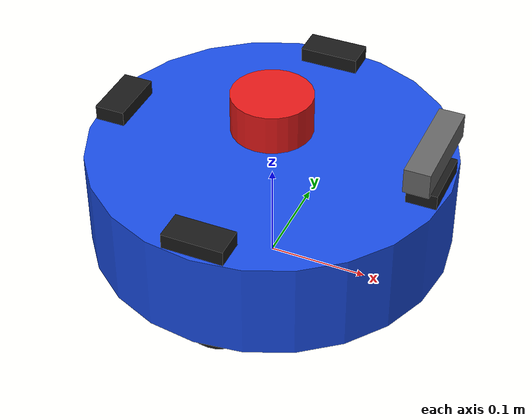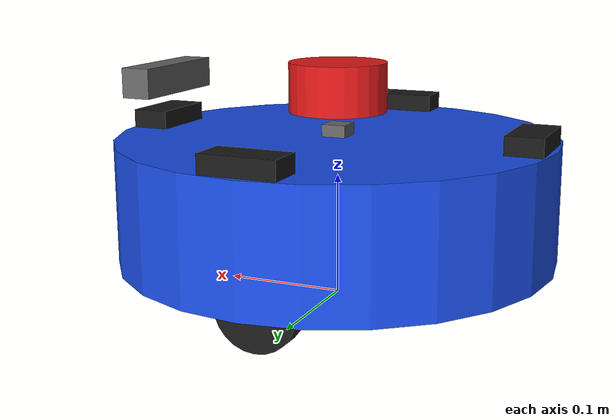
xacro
<?xml version="1.0"?>
<robot name="multi_sensor_bot" xmlns:xacro="http://www.ros.org/wiki/xacro">

  <!-- ===== Parameters ===== -->
  <xacro:property name="base_radius" value="0.18"/>
  <xacro:property name="base_height" value="0.10"/>
  <xacro:property name="wheel_radius" value="0.033"/>
  <xacro:property name="wheel_width"  value="0.018"/>
  <xacro:property name="wheel_sep"    value="0.287"/>
  <xacro:property name="base_mass"    value="2.0"/>

  <!-- ===== Materials ===== -->
  <material name="grey"><color rgba="0.4 0.4 0.4 1"/></material>
  <material name="dark"><color rgba="0.1 0.1 0.1 1"/></material>
  <material name="blue"><color rgba="0.1 0.3 0.9 1"/></material>
  <material name="red"><color rgba="0.9 0.1 0.1 1"/></material>

  <!-- ===== Inertial macros ===== -->
  <xacro:macro name="cyl_inertial" params="m r h">
    <inertial>
      <mass value="${m}"/>
      <origin xyz="0 0 0"/>
      <inertia ixx="${(1/12)*m*(3*r*r + h*h)}" iyy="${(1/12)*m*(3*r*r + h*h)}" izz="${0.5*m*r*r}"
               ixy="0" ixz="0" iyz="0"/>
    </inertial>
  </xacro:macro>
  <xacro:macro name="box_inertial" params="m x y z">
    <inertial>
      <mass value="${m}"/>
      <origin xyz="0 0 0"/>
      <inertia ixx="${(1/12)*m*(y*y+z*z)}" iyy="${(1/12)*m*(x*x+z*z)}" izz="${(1/12)*m*(x*x+y*y)}"
               ixy="0" ixz="0" iyz="0"/>
    </inertial>
  </xacro:macro>

  <!-- ===== Base footprint / link ===== -->
  <link name="base_footprint"/>

  <joint name="base_joint" type="fixed">
    <parent link="base_footprint"/>
    <child  link="base_link"/>
    <origin xyz="0 0 ${wheel_radius}" rpy="0 0 0"/>
  </joint>

  <link name="base_link">
    <visual>
      <origin xyz="0 0 ${base_height/2}" rpy="0 0 0"/>
      <geometry><cylinder radius="${base_radius}" length="${base_height}"/></geometry>
      <material name="blue"/>
    </visual>
    <collision>
      <origin xyz="0 0 ${base_height/2}" rpy="0 0 0"/>
      <geometry><cylinder radius="${base_radius}" length="${base_height}"/></geometry>
    </collision>
    <xacro:cyl_inertial m="${base_mass}" r="${base_radius}" h="${base_height}"/>
  </link>

  <!-- ===== Wheels ===== -->
  <xacro:macro name="wheel" params="prefix y_offset">
    <link name="${prefix}_wheel_link">
      <visual>
        <origin xyz="0 0 0" rpy="${pi/2} 0 0"/>
        <geometry><cylinder radius="${wheel_radius}" length="${wheel_width}"/></geometry>
        <material name="dark"/>
      </visual>
      <collision>
        <origin xyz="0 0 0" rpy="${pi/2} 0 0"/>
        <geometry><cylinder radius="${wheel_radius}" length="${wheel_width}"/></geometry>
      </collision>
      <xacro:cyl_inertial m="0.1" r="${wheel_radius}" h="${wheel_width}"/>
    </link>
    <joint name="${prefix}_wheel_joint" type="continuous">
      <parent link="base_link"/>
      <child  link="${prefix}_wheel_link"/>
      <origin xyz="0 ${y_offset} 0" rpy="0 0 0"/>
      <axis xyz="0 1 0"/>
    </joint>
    <gazebo reference="${prefix}_wheel_link">
      <mu1>1.0</mu1><mu2>1.0</mu2>
    </gazebo>
  </xacro:macro>
  <xacro:wheel prefix="left"  y_offset="${ wheel_sep/2}"/>
  <xacro:wheel prefix="right" y_offset="${-wheel_sep/2}"/>

  <!-- ===== Caster ===== -->
  <link name="caster_link">
    <visual><geometry><sphere radius="0.015"/></geometry><material name="dark"/></visual>
    <collision><geometry><sphere radius="0.015"/></geometry></collision>
    <inertial><mass value="0.01"/><inertia ixx="1e-6" iyy="1e-6" izz="1e-6" ixy="0" ixz="0" iyz="0"/></inertial>
  </link>
  <joint name="caster_joint" type="fixed">
    <parent link="base_link"/>
    <child  link="caster_link"/>
    <origin xyz="-0.12 0 ${-wheel_radius+0.015}" rpy="0 0 0"/>
  </joint>
  <gazebo reference="caster_link">
    <mu1>0.0</mu1><mu2>0.0</mu2>
  </gazebo>

  <!-- ===== LIDAR ===== -->
  <link name="lidar_link">
    <visual><geometry><cylinder radius="0.04" length="0.04"/></geometry><material name="red"/></visual>
    <collision><geometry><cylinder radius="0.04" length="0.04"/></geometry></collision>
    <xacro:cyl_inertial m="0.1" r="0.04" h="0.04"/>
  </link>
  <joint name="lidar_joint" type="fixed">
    <parent link="base_link"/>
    <child  link="lidar_link"/>
    <origin xyz="0 0 ${base_height + 0.04}" rpy="0 0 0"/>
  </joint>
  <gazebo reference="lidar_link">
    <sensor name="lidar_sensor" type="ray">
      <pose>0 0 0 0 0 0</pose>
      <update_rate>10</update_rate>
      <visualize>true</visualize>
      <ray>
        <scan><horizontal>
          <samples>360</samples><resolution>1</resolution>
          <min_angle>-3.14159</min_angle><max_angle>3.14159</max_angle>
        </horizontal></scan>
        <range><min>0.12</min><max>12.0</max><resolution>0.01</resolution></range>
        <noise><type>gaussian</type><mean>0</mean><stddev>0.01</stddev></noise>
      </ray>
      <plugin name="lidar_plugin" filename="libgazebo_ros_ray_sensor.so">
        <ros><namespace>/</namespace><remapping>~/out:=scan</remapping></ros>
        <output_type>sensor_msgs/LaserScan</output_type>
        <frame_name>lidar_link</frame_name>
      </plugin>
    </sensor>
  </gazebo>

  <!-- ===== IMU ===== -->
  <link name="imu_link">
    <visual><geometry><box size="0.02 0.02 0.01"/></geometry><material name="grey"/></visual>
    <xacro:box_inertial m="0.01" x="0.02" y="0.02" z="0.01"/>
  </link>
  <joint name="imu_joint" type="fixed">
    <parent link="base_link"/>
    <child  link="imu_link"/>
    <origin xyz="0 0 ${base_height + 0.005}" rpy="0 0 0"/>
  </joint>
  <gazebo reference="imu_link">
    <sensor name="imu_sensor" type="imu">
      <always_on>true</always_on>
      <update_rate>100</update_rate>
      <plugin name="imu_plugin" filename="libgazebo_ros_imu_sensor.so">
        <ros><namespace>/</namespace><remapping>~/out:=imu</remapping></ros>
        <frame_name>imu_link</frame_name>
      </plugin>
    </sensor>
  </gazebo>

  <!-- ===== Camera macro ===== -->
  <xacro:macro name="rgb_camera" params="name xyz rpy topic">
    <link name="${name}_link">
      <visual><geometry><box size="0.03 0.06 0.03"/></geometry><material name="dark"/></visual>
      <xacro:box_inertial m="0.05" x="0.03" y="0.06" z="0.03"/>
    </link>
    <joint name="${name}_joint" type="fixed">
      <parent link="base_link"/>
      <child  link="${name}_link"/>
      <origin xyz="${xyz}" rpy="${rpy}"/>
    </joint>
    <gazebo reference="${name}_link">
      <sensor name="${name}_sensor" type="camera">
        <update_rate>15</update_rate>
        <camera>
          <horizontal_fov>1.3962634</horizontal_fov>
          <image><width>640</width><height>480</height><format>R8G8B8</format></image>
          <clip><near>0.05</near><far>20.0</far></clip>
        </camera>
        <plugin name="${name}_plugin" filename="libgazebo_ros_camera.so">
          <ros><namespace>/</namespace></ros>
          <camera_name>${topic}</camera_name>
          <frame_name>${name}_link</frame_name>
        </plugin>
      </sensor>
    </gazebo>
  </xacro:macro>

  <xacro:rgb_camera name="cam_front" xyz="${base_radius - 0.02} 0 ${base_height}"            rpy="0 0 0"        topic="camera_front"/>
  <xacro:rgb_camera name="cam_rear"  xyz="${-base_radius + 0.02} 0 ${base_height}"           rpy="0 0 ${pi}"    topic="camera_rear"/>
  <xacro:rgb_camera name="cam_left"  xyz="0 ${ base_radius - 0.02} ${base_height}"           rpy="0 0 ${ pi/2}" topic="camera_left"/>
  <xacro:rgb_camera name="cam_right" xyz="0 ${-base_radius + 0.02} ${base_height}"           rpy="0 0 ${-pi/2}" topic="camera_right"/>

  <!-- ===== Depth (RGB-D) camera, front ===== -->
  <link name="depth_cam_link">
    <visual><geometry><box size="0.025 0.10 0.025"/></geometry><material name="grey"/></visual>
    <xacro:box_inertial m="0.05" x="0.025" y="0.10" z="0.025"/>
  </link>
  <joint name="depth_cam_joint" type="fixed">
    <parent link="base_link"/>
    <child  link="depth_cam_link"/>
    <origin xyz="${base_radius - 0.02} 0 ${base_height + 0.04}" rpy="0 0 0"/>
  </joint>
  <gazebo reference="depth_cam_link">
    <sensor name="depth_cam_sensor" type="depth">
      <update_rate>15</update_rate>
      <camera>
        <horizontal_fov>1.047</horizontal_fov>
        <image><width>640</width><height>480</height><format>R8G8B8</format></image>
        <clip><near>0.1</near><far>10.0</far></clip>
      </camera>
      <plugin name="depth_cam_plugin" filename="libgazebo_ros_camera.so">
        <ros><namespace>/</namespace></ros>
        <camera_name>depth_camera</camera_name>
        <frame_name>depth_cam_link</frame_name>
      </plugin>
    </sensor>
  </gazebo>

  <!-- ===== Differential drive plugin ===== -->
  <gazebo>
    <plugin name="diff_drive" filename="libgazebo_ros_diff_drive.so">
      <ros><namespace>/</namespace></ros>
      <update_rate>50</update_rate>
      <left_joint>left_wheel_joint</left_joint>
      <right_joint>right_wheel_joint</right_joint>
      <wheel_separation>${wheel_sep}</wheel_separation>
      <wheel_diameter>${2*wheel_radius}</wheel_diameter>
      <max_wheel_torque>10.0</max_wheel_torque>
      <max_wheel_acceleration>2.0</max_wheel_acceleration>
      <publish_odom>true</publish_odom>
      <publish_odom_tf>true</publish_odom_tf>
      <publish_wheel_tf>true</publish_wheel_tf>
      <odometry_frame>odom</odometry_frame>
      <robot_base_frame>base_footprint</robot_base_frame>
      <command_topic>cmd_vel</command_topic>
    </plugin>
  </gazebo>

  <!-- ===== Joint state publisher plugin ===== -->
  <gazebo>
    <plugin name="joint_states" filename="libgazebo_ros_joint_state_publisher.so">
      <ros><namespace>/</namespace></ros>
      <update_rate>30</update_rate>
      <joint_name>left_wheel_joint</joint_name>
      <joint_name>right_wheel_joint</joint_name>
    </plugin>
  </gazebo>

</robot>
